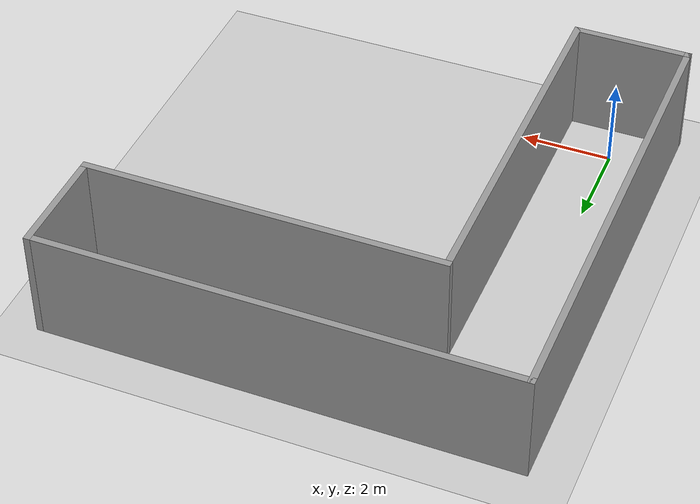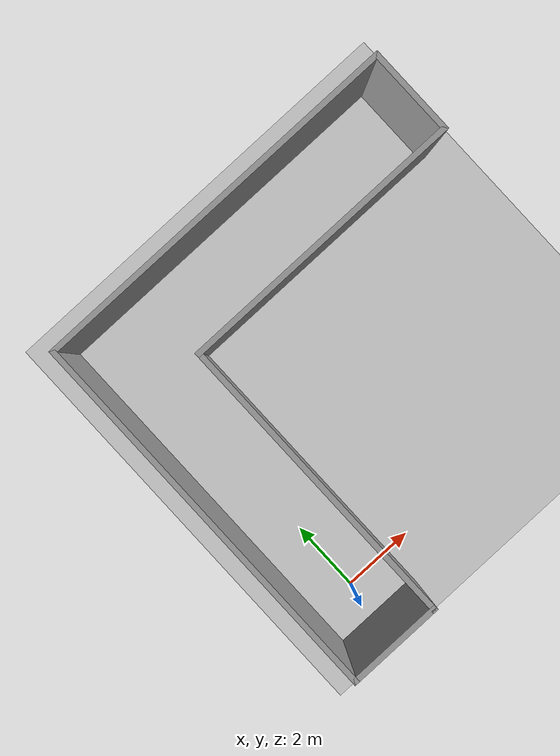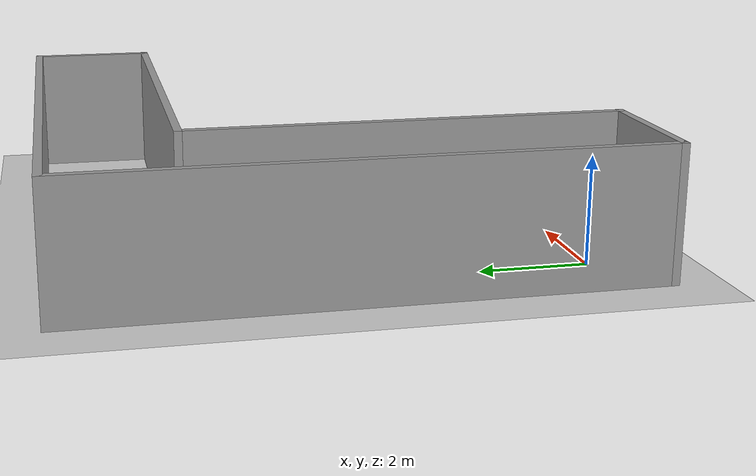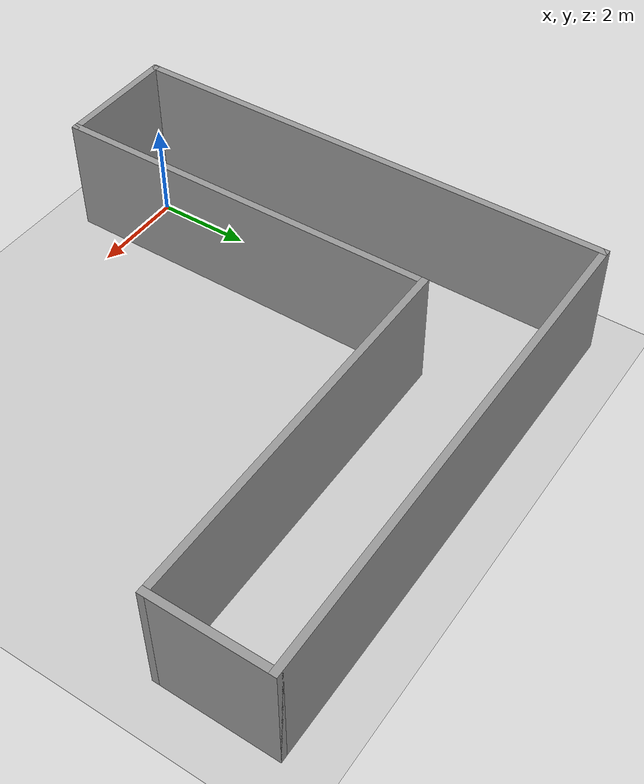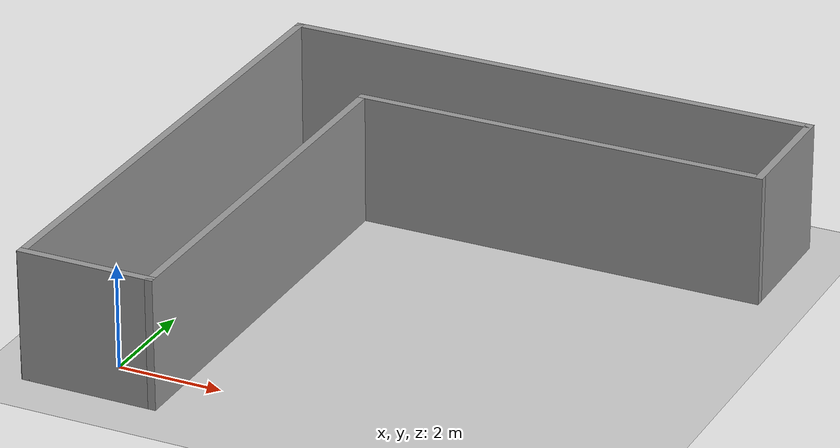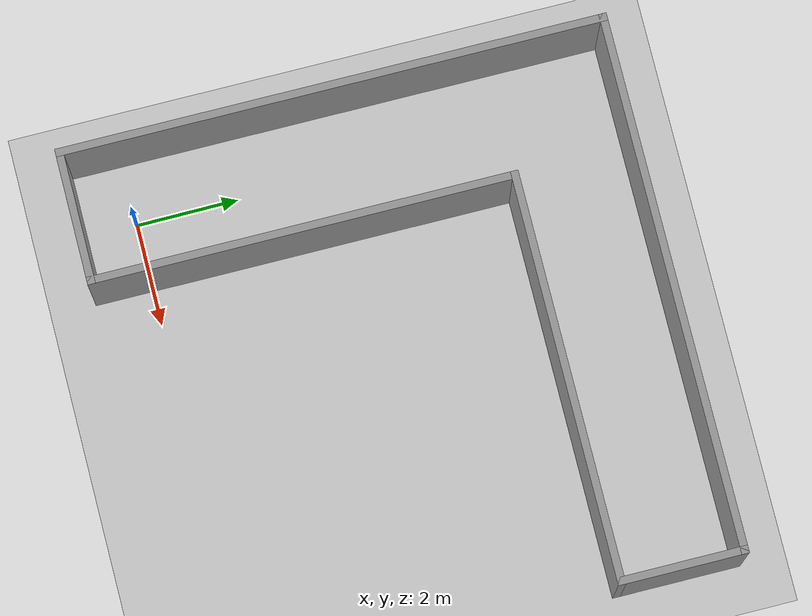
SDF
<sdf version="1.7">
 <world name="default">
  <light name="sun" type="directional">
   <pose>0 0 10 0 -0 0</pose>
   <diffuse>0.8 0.8 0.8 1</diffuse>
   <specular>0.2 0.2 0.2 1</specular>
   <attenuation>
    <range>1000</range>
    <constant>0.9</constant>
    <linear>0.01</linear>
    <quadratic>0.001</quadratic>
   </attenuation>
   <direction>-0.5 0.1 -0.9</direction>
   <spot><inner_angle>0</inner_angle><outer_angle>0</outer_angle><falloff>0</falloff></spot>
  </light>
  <model name="ground_plane">
   <static>1</static>
   <link name="link">
    <collision name="collision">
     <geometry><plane><normal>0 0 1</normal><size>100 100</size></plane></geometry>
     <surface><friction><ode><mu>100</mu><mu2>50</mu2></ode></friction></surface>
    </collision>
    <visual name="visual">
     <cast_shadows>0</cast_shadows>
     <geometry><plane><normal>0 0 1</normal><size>100 100</size></plane></geometry>
     <material>
      <script><uri>file://media/materials/scripts/gazebo.material</uri><name>Gazebo/Grey</name></script>
     </material>
    </visual>
   </link>
  </model>
  <gravity>0 0 -9.8</gravity>
  <magnetic_field>6e-06 2.3e-05 -4.2e-05</magnetic_field>
  <atmosphere type="adiabatic"/>
  <physics type="ode">
   <max_step_size>0.001</max_step_size>
   <real_time_factor>1</real_time_factor>
   <real_time_update_rate>1000</real_time_update_rate>
  </physics>
  <scene><ambient>0.4 0.4 0.4 1</ambient><background>0.7 0.7 0.7 1</background><shadows>1</shadows></scene>
  <audio><device>default</device></audio>
  <spherical_coordinates>
   <surface_model>EARTH_WGS84</surface_model>
   <latitude_deg>0</latitude_deg>
   <longitude_deg>0</longitude_deg>
   <elevation>0</elevation>
   <heading_deg>0</heading_deg>
  </spherical_coordinates>
  <model name="Untitled">
   <pose>3.925 4.2 0 0 -0 0</pose>
   <link name="Wall_11">
    <collision name="Wall_11_Collision">
     <geometry><box><size>8.15 0.15 2.5</size></box></geometry>
     <pose>0 0 1.25 0 -0 0</pose>
    </collision>
    <visual name="Wall_11_Visual">
     <pose>0 0 1.25 0 -0 0</pose>
     <geometry><box><size>8.15 0.15 2.5</size></box></geometry>
     <material>
      <script><uri>file://media/materials/scripts/gazebo.material</uri><name>Gazebo/Grey</name></script>
      <ambient>1 1 1 1</ambient>
     </material>
     <meta><layer>0</layer></meta>
    </visual>
    <pose>-2.675 -1.25 0 0 -0 1.5708</pose>
   </link>
   <link name="Wall_15">
    <collision name="Wall_15_Collision">
     <geometry><box><size>10.5 0.15 2.5</size></box></geometry>
     <pose>0 0 1.25 0 -0 0</pose>
    </collision>
    <visual name="Wall_15_Visual">
     <pose>0 0 1.25 0 -0 0</pose>
     <geometry><box><size>10.5 0.15 2.5</size></box></geometry>
     <material>
      <script><uri>file://media/materials/scripts/gazebo.material</uri><name>Gazebo/Grey</name></script>
      <ambient>1 1 1 1</ambient>
     </material>
     <meta><layer>0</layer></meta>
    </visual>
    <pose>0 5.25 0 0 -0 0</pose>
   </link>
   <link name="Wall_16">
    <collision name="Wall_16_Collision">
     <geometry><box><size>2.5 0.15 2.5</size></box></geometry>
     <pose>0 0 1.25 0 -0 0</pose>
    </collision>
    <visual name="Wall_16_Visual">
     <pose>0 0 1.25 0 -0 0</pose>
     <geometry><box><size>2.5 0.15 2.5</size></box></geometry>
     <material>
      <script><uri>file://media/materials/scripts/gazebo.material</uri><name>Gazebo/Grey</name></script>
      <ambient>1 1 1 1</ambient>
     </material>
     <meta><layer>0</layer></meta>
    </visual>
    <pose>5.175 4.075 0 0 -0 -1.5708</pose>
   </link>
   <link name="Wall_18">
    <collision name="Wall_18_Collision">
     <geometry><box><size>8 0.15 2.5</size></box></geometry>
     <pose>0 0 1.25 0 -0 0</pose>
    </collision>
    <visual name="Wall_18_Visual">
     <pose>0 0 1.25 0 -0 0</pose>
     <geometry><box><size>8 0.15 2.5</size></box></geometry>
     <material>
      <script><uri>file://media/materials/scripts/gazebo.material</uri><name>Gazebo/Grey</name></script>
      <ambient>1 1 1 1</ambient>
     </material>
     <meta><layer>0</layer></meta>
    </visual>
    <pose>1.25 2.9 0 0 -0 3.14159</pose>
   </link>
   <link name="Wall_2">
    <collision name="Wall_2_Collision">
     <geometry><box><size>0.15 0.15 2.5</size></box></geometry>
     <pose>0 0 1.25 0 -0 0</pose>
    </collision>
    <visual name="Wall_2_Visual">
     <pose>0 0 1.25 0 -0 0</pose>
     <geometry><box><size>0.15 0.15 2.5</size></box></geometry>
     <material>
      <script><uri>file://media/materials/scripts/gazebo.material</uri><name>Gazebo/Grey</name></script>
      <ambient>1 1 1 1</ambient>
     </material>
     <meta><layer>0</layer></meta>
    </visual>
    <pose>-5.175 -5.25 0 0 -0 0</pose>
   </link>
   <link name="Wall_4">
    <collision name="Wall_4_Collision">
     <geometry><box><size>10.65 0.15 2.5</size></box></geometry>
     <pose>0 0 1.25 0 -0 0</pose>
    </collision>
    <visual name="Wall_4_Visual">
     <pose>0 0 1.25 0 -0 0</pose>
     <geometry><box><size>10.65 0.15 2.5</size></box></geometry>
     <material>
      <script><uri>file://media/materials/scripts/gazebo.material</uri><name>Gazebo/Grey</name></script>
      <ambient>1 1 1 1</ambient>
     </material>
     <meta><layer>0</layer></meta>
    </visual>
    <pose>-5.175 0 0 0 -0 1.5708</pose>
   </link>
   <link name="Wall_9">
    <collision name="Wall_9_Collision">
     <geometry><box><size>2.65 0.15 2.5</size></box></geometry>
     <pose>0 0 1.25 0 -0 0</pose>
    </collision>
    <visual name="Wall_9_Visual">
     <pose>0 0 1.25 0 -0 0</pose>
     <geometry><box><size>2.65 0.15 2.5</size></box></geometry>
     <material>
      <script><uri>file://media/materials/scripts/gazebo.material</uri><name>Gazebo/Grey</name></script>
      <ambient>1 1 1 1</ambient>
     </material>
     <meta><layer>0</layer></meta>
    </visual>
    <pose>-3.925 -5.25 0 0 -0 0</pose>
   </link>
   <static>1</static>
  </model>
 </world>
</sdf>
